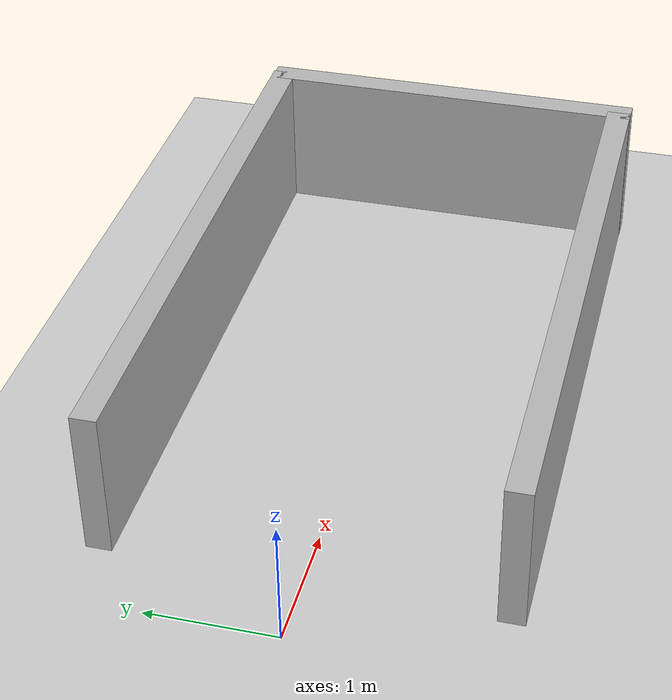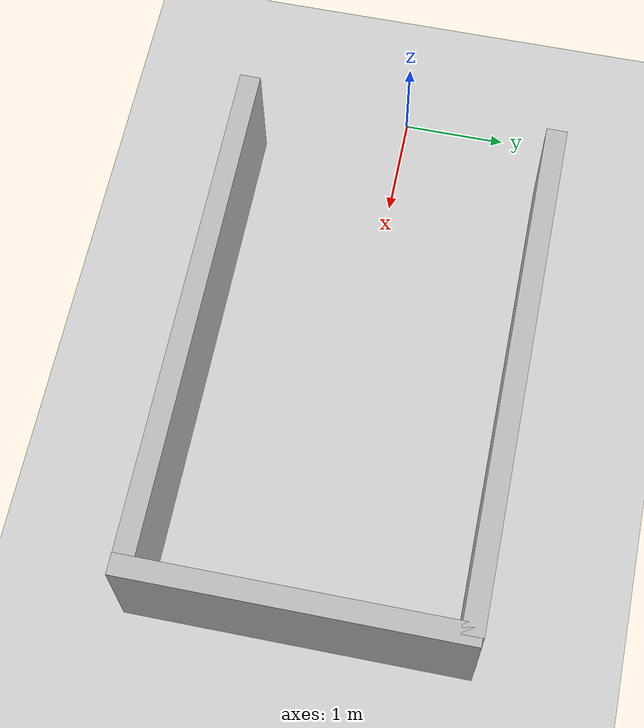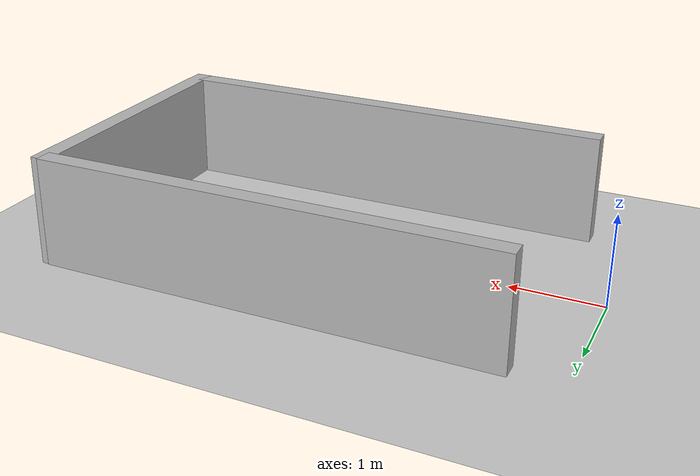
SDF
<?xml version="1.0"?>
<sdf version="1.6">
  <world name="v2-04g-r5-maneuver-s5134">
    <gravity>0 0 -9.81</gravity>
    <physics name="v2_deterministic" type="ode">
      <max_step_size>0.002</max_step_size>
      <real_time_update_rate>500</real_time_update_rate>
    </physics>
    <include>
      <uri>model://sun</uri>
    </include>
    <include>
      <uri>model://ground_plane</uri>
    </include>
    <model name="bay-left">
      <static>true</static>
      <pose>3.024043512 1.524516505 0.600000000 0 0 0.003627112</pose>
      <link name="link">
        <collision name="collision">
          <geometry>
            <box>
              <size>5.000000 0.200000 1.200000</size>
            </box>
          </geometry>
        </collision>
        <visual name="visual">
          <geometry>
            <box>
              <size>5.000000 0.200000 1.200000</size>
            </box>
          </geometry>
        </visual>
      </link>
    </model>
    <model name="bay-right">
      <static>true</static>
      <pose>2.997943591 -1.484667602 0.600000000 0 0 0.003403413</pose>
      <link name="link">
        <collision name="collision">
          <geometry>
            <box>
              <size>5.000000 0.200000 1.200000</size>
            </box>
          </geometry>
        </collision>
        <visual name="visual">
          <geometry>
            <box>
              <size>5.000000 0.200000 1.200000</size>
            </box>
          </geometry>
        </visual>
      </link>
    </model>
    <model name="bay-back">
      <static>true</static>
      <pose>5.507738427 0.020304778 0.600000000 0 0 0.000492565</pose>
      <link name="link">
        <collision name="collision">
          <geometry>
            <box>
              <size>0.200000 3.200000 1.200000</size>
            </box>
          </geometry>
        </collision>
        <visual name="visual">
          <geometry>
            <box>
              <size>0.200000 3.200000 1.200000</size>
            </box>
          </geometry>
        </visual>
      </link>
    </model>
  </world>
</sdf>
